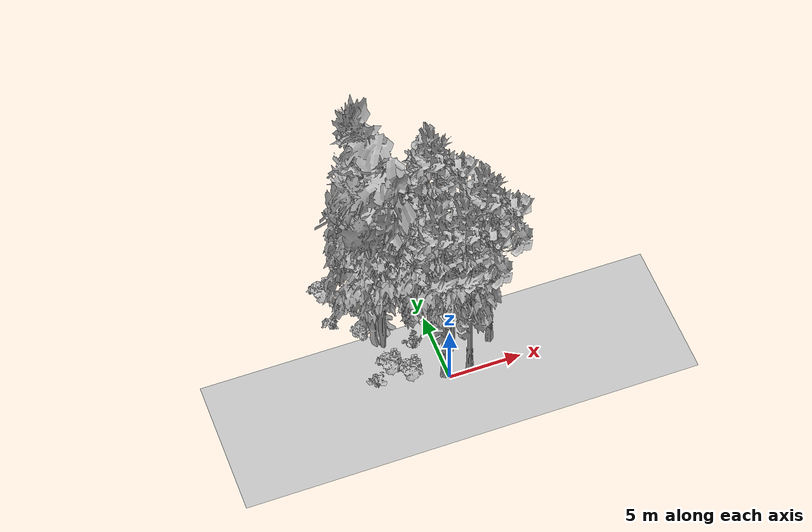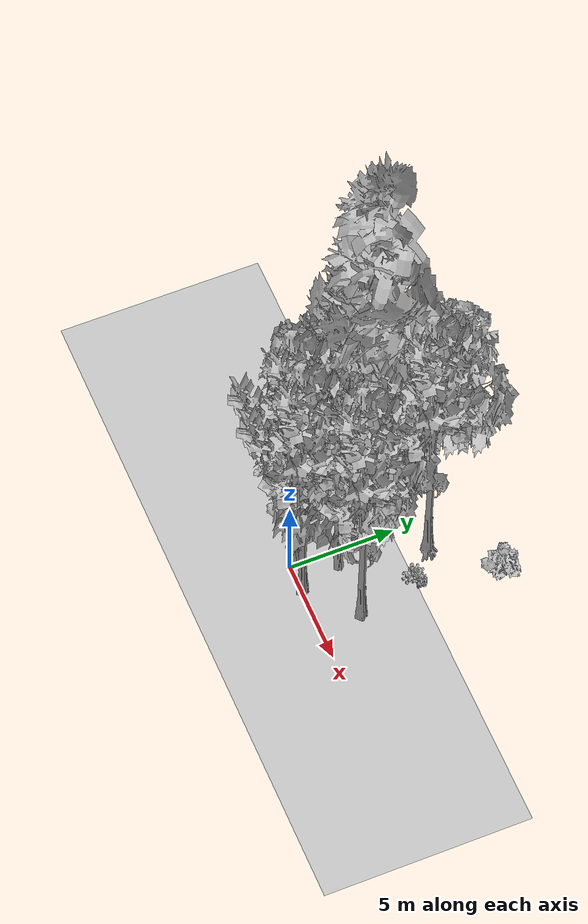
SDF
<sdf version="1.7">
 <world name="default">
  <model name="ground_plane">
   <static>1</static>
   <link name="link">
    <collision name="collision">
     <geometry><plane><normal>0 0 1</normal><size>100 100</size></plane></geometry>
     <surface><contact><ode><min_depth>0.01</min_depth><max_vel>0</max_vel></ode></contact></surface>
    </collision>
    <visual name="grass">
     <cast_shadows>0</cast_shadows>
     <geometry>
      <mesh>
       <scale>0.5814285714285714 0.18142857142857144 0.1</scale>
       <uri>file://grass_plane/meshes/grass_plane.dae</uri>
      </mesh>
     </geometry>
    </visual>
   </link>
  </model>
  <model name="Tree 112">
   <static>1</static>
   <pose>-2.380452181031977 6.566057448837274 0 1.57079 -0 0</pose>
   <link name="link">
    <collision name="collision">
     <geometry><mesh><scale>3.5 5 3.5</scale><uri>model://tree_2/meshes/tree_2.obj</uri></mesh></geometry>
    </collision>
    <visual name="visual">
     <geometry><mesh><scale>3.5 5 3.5</scale><uri>model://tree_2/meshes/tree_2.obj</uri></mesh></geometry>
    </visual>
   </link>
  </model>
  <model name="Tree 118">
   <static>1</static>
   <pose>1.4018315452375916 0.034181280192912666 0 1.57079 -0 0</pose>
   <link name="link">
    <collision name="collision">
     <geometry><mesh><scale>3.5 5 3.5</scale><uri>model://tree_9/meshes/tree_9.obj</uri></mesh></geometry>
    </collision>
    <visual name="visual">
     <geometry><mesh><scale>3.5 5 3.5</scale><uri>model://tree_9/meshes/tree_9.obj</uri></mesh></geometry>
    </visual>
   </link>
  </model>
  <model name="Tree 221">
   <static>1</static>
   <pose>3.5277741900967783 1.9737184957499103 0 1.57079 -0 0</pose>
   <link name="link">
    <collision name="collision">
     <geometry><mesh><scale>3.5 5 3.5</scale><uri>model://tree_9/meshes/tree_9.obj</uri></mesh></geometry>
    </collision>
    <visual name="visual">
     <geometry><mesh><scale>3.5 5 3.5</scale><uri>model://tree_9/meshes/tree_9.obj</uri></mesh></geometry>
    </visual>
   </link>
  </model>
  <model name="Tree 271">
   <static>1</static>
   <pose>-0.14788959306739002 3.2287841749539936 0 1.57079 -0 0</pose>
   <link name="link">
    <collision name="collision">
     <geometry><mesh><scale>3.5 5 3.5</scale><uri>model://tree_2/meshes/tree_2.obj</uri></mesh></geometry>
    </collision>
    <visual name="visual">
     <geometry><mesh><scale>3.5 5 3.5</scale><uri>model://tree_2/meshes/tree_2.obj</uri></mesh></geometry>
    </visual>
   </link>
  </model>
  <model name="Tree 278">
   <static>1</static>
   <pose>1.3871301194502692 6.112657232694215 0 1.57079 -0 0</pose>
   <link name="link">
    <collision name="collision">
     <geometry><mesh><scale>3.5 5 3.5</scale><uri>model://tree_9/meshes/tree_9.obj</uri></mesh></geometry>
    </collision>
    <visual name="visual">
     <geometry><mesh><scale>3.5 5 3.5</scale><uri>model://tree_9/meshes/tree_9.obj</uri></mesh></geometry>
    </visual>
   </link>
  </model>
  <model name="Tree 309">
   <static>1</static>
   <pose>0.755460832090435 1.9922243614843431 0 1.57079 -0 0</pose>
   <link name="link">
    <collision name="collision">
     <geometry><mesh><scale>3.5 5 3.5</scale><uri>model://tree_2/meshes/tree_2.obj</uri></mesh></geometry>
    </collision>
    <visual name="visual">
     <geometry><mesh><scale>3.5 5 3.5</scale><uri>model://tree_2/meshes/tree_2.obj</uri></mesh></geometry>
    </visual>
   </link>
  </model>
  <model name="Tree 386">
   <static>1</static>
   <pose>-1.9917247827710725 7.751844349801665 0 1.57079 -0 0</pose>
   <link name="link">
    <collision name="collision">
     <geometry><mesh><scale>3.5 5 3.5</scale><uri>model://tree_2/meshes/tree_2.obj</uri></mesh></geometry>
    </collision>
    <visual name="visual">
     <geometry><mesh><scale>3.5 5 3.5</scale><uri>model://tree_2/meshes/tree_2.obj</uri></mesh></geometry>
    </visual>
   </link>
  </model>
  <model name="Tree 431">
   <static>1</static>
   <pose>-3.338649497080567 3.8875309977039727 0 1.57079 -0 0</pose>
   <link name="link">
    <collision name="collision">
     <geometry><mesh><scale>3.5 5 3.5</scale><uri>model://tree_2/meshes/tree_2.obj</uri></mesh></geometry>
    </collision>
    <visual name="visual">
     <geometry><mesh><scale>3.5 5 3.5</scale><uri>model://tree_2/meshes/tree_2.obj</uri></mesh></geometry>
    </visual>
   </link>
  </model>
  <model name="Tree 444">
   <static>1</static>
   <pose>-0.2676645940905402 0.3034621854816706 0 1.57079 -0 0</pose>
   <link name="link">
    <collision name="collision">
     <geometry><mesh><scale>3.5 5 3.5</scale><uri>model://tree_9/meshes/tree_9.obj</uri></mesh></geometry>
    </collision>
    <visual name="visual">
     <geometry><mesh><scale>3.5 5 3.5</scale><uri>model://tree_9/meshes/tree_9.obj</uri></mesh></geometry>
    </visual>
   </link>
  </model>
  <model name="Tree 445">
   <static>1</static>
   <pose>-3.4375276971092816 5.527504980204881 0 1.57079 -0 0</pose>
   <link name="link">
    <collision name="collision">
     <geometry><mesh><scale>3.5 5 3.5</scale><uri>model://tree_4/meshes/tree_4.obj</uri></mesh></geometry>
    </collision>
    <visual name="visual">
     <geometry><mesh><scale>3.5 5 3.5</scale><uri>model://tree_4/meshes/tree_4.obj</uri></mesh></geometry>
    </visual>
   </link>
  </model>
  <model name="Bush 12">
   <static>1</static>
   <pose>-3.4682313379464205 8.069357691321315 0 1.57079 -0 0</pose>
   <link name="link">
    <collision name="collision">
     <geometry><mesh><scale>2 2 2</scale><uri>model://bush_2/meshes/bush_2.obj</uri></mesh></geometry>
     <surface><contact><collide_without_contact>false</collide_without_contact></contact></surface>
    </collision>
    <visual name="visual">
     <geometry><mesh><scale>2 2 2</scale><uri>model://bush_2/meshes/bush_2.obj</uri></mesh></geometry>
    </visual>
   </link>
  </model>
  <model name="Bush 69">
   <static>1</static>
   <pose>-4.337480961746486 5.265462682473267 0 1.57079 -0 0</pose>
   <link name="link">
    <collision name="collision">
     <geometry><mesh><scale>2 2 2</scale><uri>model://bush_3/meshes/bush_3.obj</uri></mesh></geometry>
     <surface><contact><collide_without_contact>false</collide_without_contact></contact></surface>
    </collision>
    <visual name="visual">
     <geometry><mesh><scale>2 2 2</scale><uri>model://bush_3/meshes/bush_3.obj</uri></mesh></geometry>
    </visual>
   </link>
  </model>
  <model name="Bush 86">
   <static>1</static>
   <pose>-6.030172768570914 6.759177926582904 0 1.57079 -0 0</pose>
   <link name="link">
    <collision name="collision">
     <geometry><mesh><scale>2 2 2</scale><uri>model://bush_2/meshes/bush_2.obj</uri></mesh></geometry>
     <surface><contact><collide_without_contact>false</collide_without_contact></contact></surface>
    </collision>
    <visual name="visual">
     <geometry><mesh><scale>2 2 2</scale><uri>model://bush_2/meshes/bush_2.obj</uri></mesh></geometry>
    </visual>
   </link>
  </model>
  <model name="Bush 114">
   <static>1</static>
   <pose>-4.366546245600375 7.2749940520338825 0 1.57079 -0 0</pose>
   <link name="link">
    <collision name="collision">
     <geometry><mesh><scale>2 2 2</scale><uri>model://bush_2/meshes/bush_2.obj</uri></mesh></geometry>
     <surface><contact><collide_without_contact>false</collide_without_contact></contact></surface>
    </collision>
    <visual name="visual">
     <geometry><mesh><scale>2 2 2</scale><uri>model://bush_2/meshes/bush_2.obj</uri></mesh></geometry>
    </visual>
   </link>
  </model>
  <model name="Bush 120">
   <static>1</static>
   <pose>3.1807849708815823 4.887844944595837 0 1.57079 -0 0</pose>
   <link name="link">
    <collision name="collision">
     <geometry><mesh><scale>2 2 2</scale><uri>model://bush_5/meshes/bush_5.obj</uri></mesh></geometry>
     <surface><contact><collide_without_contact>false</collide_without_contact></contact></surface>
    </collision>
    <visual name="visual">
     <geometry><mesh><scale>2 2 2</scale><uri>model://bush_5/meshes/bush_5.obj</uri></mesh></geometry>
    </visual>
   </link>
  </model>
  <model name="Bush 124">
   <static>1</static>
   <pose>-1.4154106900185255 3.0581455374757773 0 1.57079 -0 0</pose>
   <link name="link">
    <collision name="collision">
     <geometry><mesh><scale>2 2 2</scale><uri>model://bush_4/meshes/bush_4.obj</uri></mesh></geometry>
     <surface><contact><collide_without_contact>false</collide_without_contact></contact></surface>
    </collision>
    <visual name="visual">
     <geometry><mesh><scale>2 2 2</scale><uri>model://bush_4/meshes/bush_4.obj</uri></mesh></geometry>
    </visual>
   </link>
  </model>
  <model name="Bush 166">
   <static>1</static>
   <pose>-4.677973996666623 0.8586055038292422 0 1.57079 -0 0</pose>
   <link name="link">
    <collision name="collision">
     <geometry><mesh><scale>2 2 2</scale><uri>model://bush_0/meshes/bush_0.obj</uri></mesh></geometry>
     <surface><contact><collide_without_contact>false</collide_without_contact></contact></surface>
    </collision>
    <visual name="visual">
     <geometry><mesh><scale>2 2 2</scale><uri>model://bush_0/meshes/bush_0.obj</uri></mesh></geometry>
    </visual>
   </link>
  </model>
  <model name="Bush 171">
   <static>1</static>
   <pose>-2.421423689355443 0.776341711797425 0 1.57079 -0 0</pose>
   <link name="link">
    <collision name="collision">
     <geometry><mesh><scale>2 2 2</scale><uri>model://bush_1/meshes/bush_1.obj</uri></mesh></geometry>
     <surface><contact><collide_without_contact>false</collide_without_contact></contact></surface>
    </collision>
    <visual name="visual">
     <geometry><mesh><scale>2 2 2</scale><uri>model://bush_1/meshes/bush_1.obj</uri></mesh></geometry>
    </visual>
   </link>
  </model>
  <model name="Bush 192">
   <static>1</static>
   <pose>-3.4898419250350443 1.712220123174319 0 1.57079 -0 0</pose>
   <link name="link">
    <collision name="collision">
     <geometry><mesh><scale>2 2 2</scale><uri>model://bush_1/meshes/bush_1.obj</uri></mesh></geometry>
     <surface><contact><collide_without_contact>false</collide_without_contact></contact></surface>
    </collision>
    <visual name="visual">
     <geometry><mesh><scale>2 2 2</scale><uri>model://bush_1/meshes/bush_1.obj</uri></mesh></geometry>
    </visual>
   </link>
  </model>
  <model name="Bush 203">
   <static>1</static>
   <pose>-5.853704677399556 8.791257342021765 0 1.57079 -0 0</pose>
   <link name="link">
    <collision name="collision">
     <geometry><mesh><scale>2 2 2</scale><uri>model://bush_1/meshes/bush_1.obj</uri></mesh></geometry>
     <surface><contact><collide_without_contact>false</collide_without_contact></contact></surface>
    </collision>
    <visual name="visual">
     <geometry><mesh><scale>2 2 2</scale><uri>model://bush_1/meshes/bush_1.obj</uri></mesh></geometry>
    </visual>
   </link>
  </model>
  <model name="Bush 250">
   <static>1</static>
   <pose>-3.814303964207582 8.712263193479156 0 1.57079 -0 0</pose>
   <link name="link">
    <collision name="collision">
     <geometry><mesh><scale>2 2 2</scale><uri>model://bush_2/meshes/bush_2.obj</uri></mesh></geometry>
     <surface><contact><collide_without_contact>false</collide_without_contact></contact></surface>
    </collision>
    <visual name="visual">
     <geometry><mesh><scale>2 2 2</scale><uri>model://bush_2/meshes/bush_2.obj</uri></mesh></geometry>
    </visual>
   </link>
  </model>
  <model name="Bush 320">
   <static>1</static>
   <pose>3.8760365485423023 8.515114229778376 0 1.57079 -0 0</pose>
   <link name="link">
    <collision name="collision">
     <geometry><mesh><scale>2 2 2</scale><uri>model://bush_1/meshes/bush_1.obj</uri></mesh></geometry>
     <surface><contact><collide_without_contact>false</collide_without_contact></contact></surface>
    </collision>
    <visual name="visual">
     <geometry><mesh><scale>2 2 2</scale><uri>model://bush_1/meshes/bush_1.obj</uri></mesh></geometry>
    </visual>
   </link>
  </model>
 </world>
</sdf>
